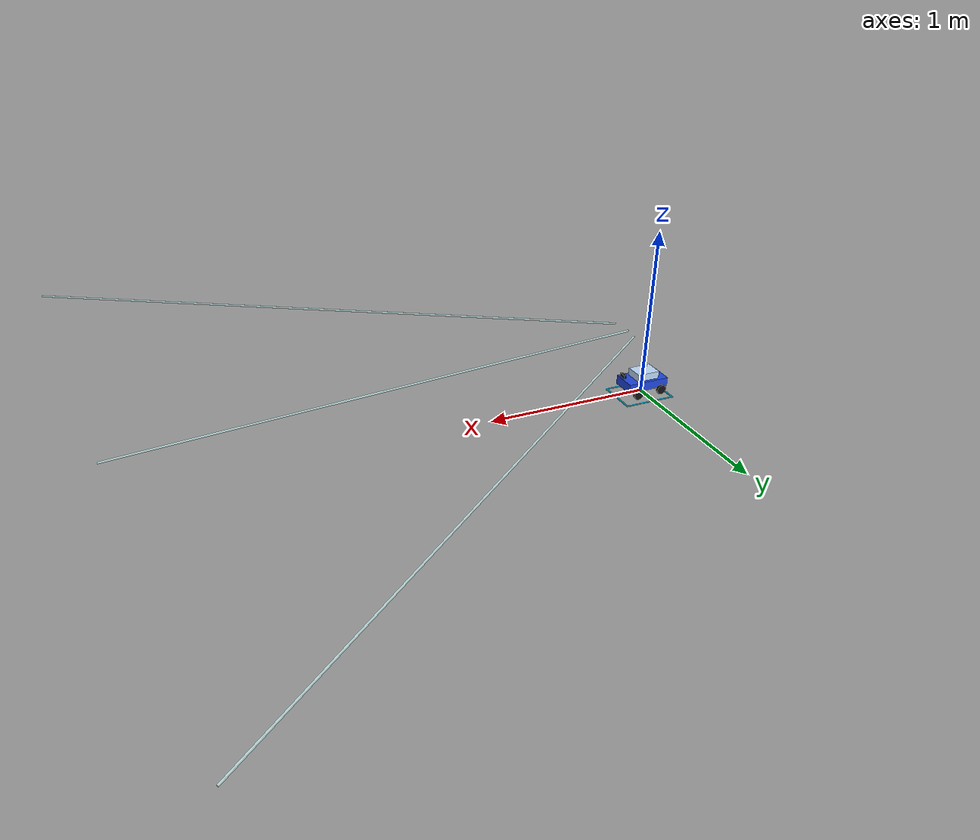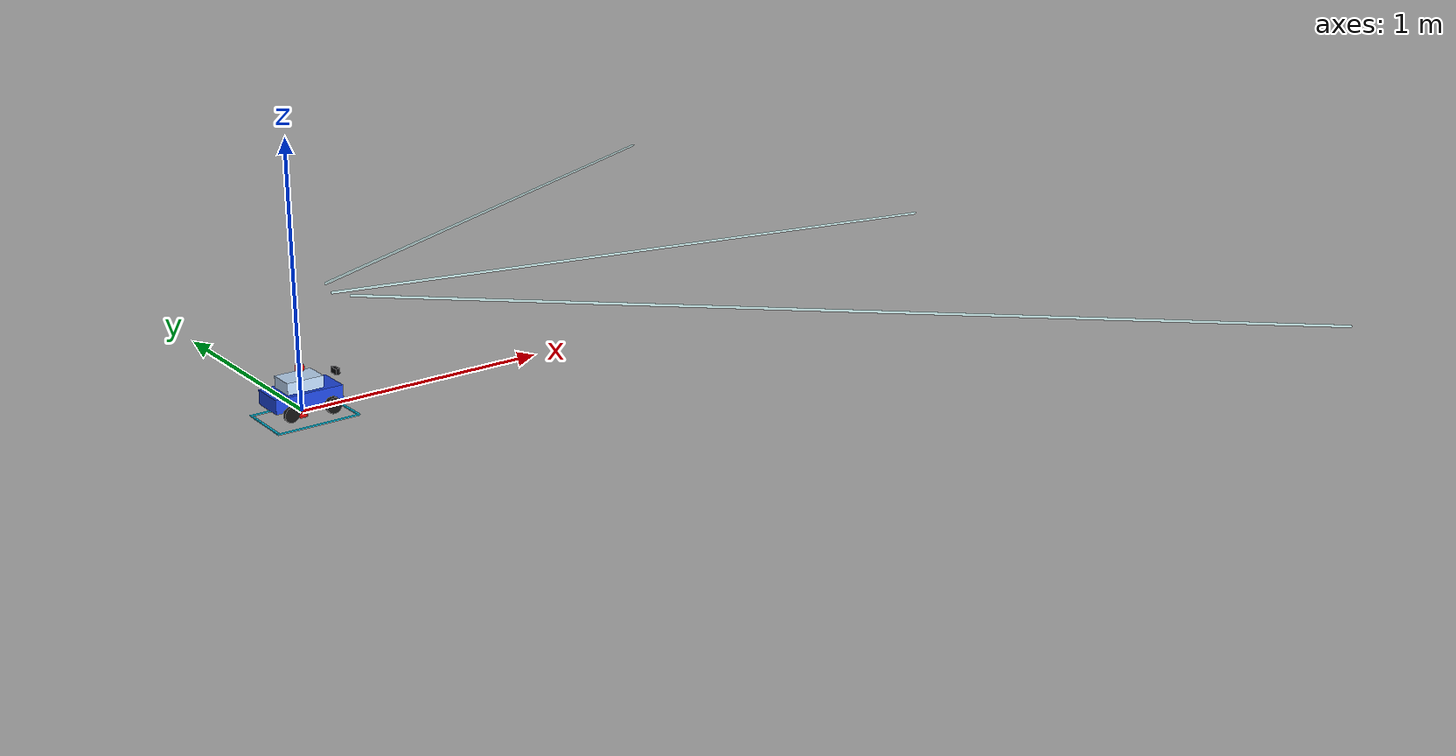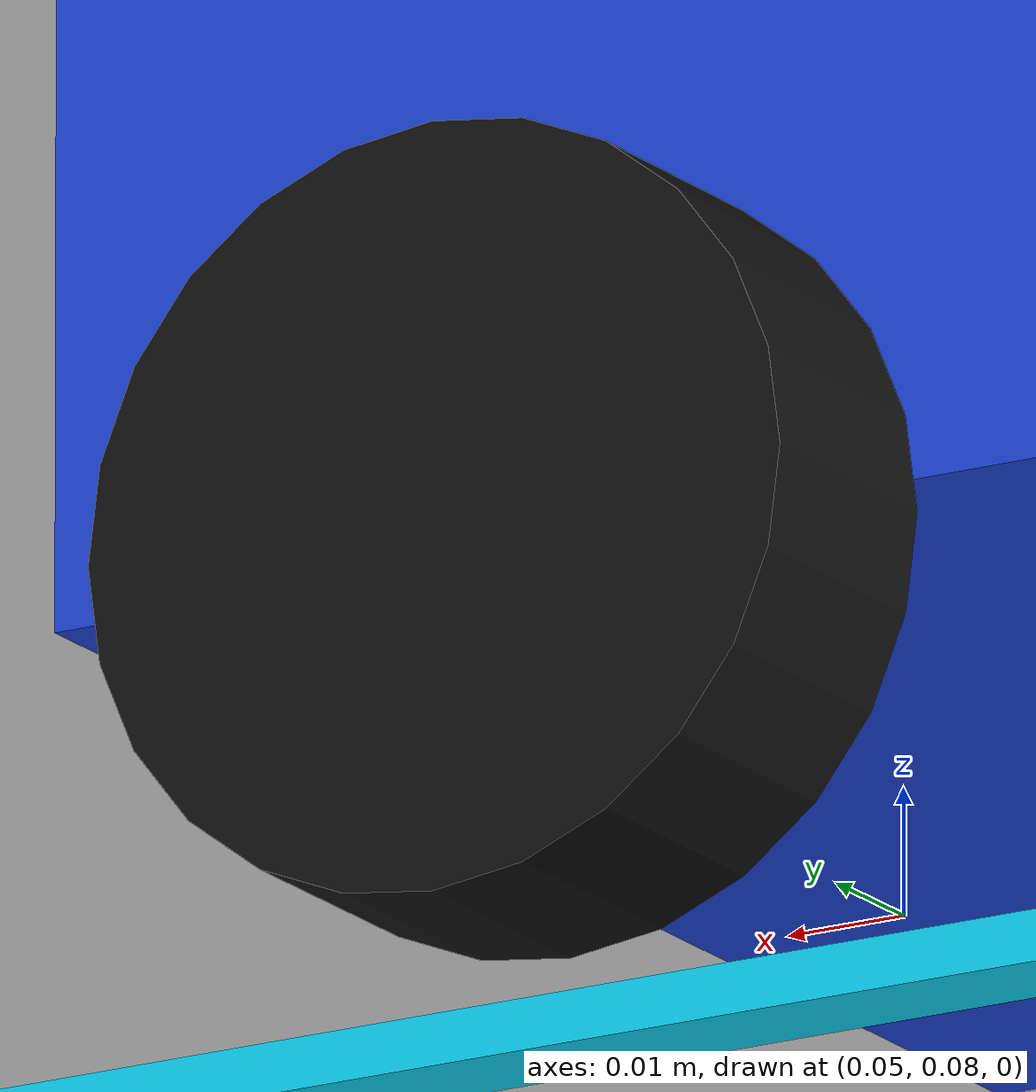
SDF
<?xml version="1.0"?>
<sdf version="1.6">
  <model name="track_preview_car">
    <static>false</static>
    <self_collide>false</self_collide>
    <allow_auto_disable>false</allow_auto_disable>
    <link name="body">
      <gravity>true</gravity>
      <inertial>
        <mass>1.0</mass>
        <inertia>
          <ixx>0.01</ixx>
          <iyy>0.01</iyy>
          <izz>0.01</izz>
          <ixy>0.0</ixy>
          <ixz>0.0</ixz>
          <iyz>0.0</iyz>
        </inertia>
      </inertial>
      <visual name="chassis_visual">
        <pose>0 0 0.065 0 0 0</pose>
        <geometry>
          <box>
            <size>0.26 0.14 0.055</size>
          </box>
        </geometry>
        <material>
          <ambient>0.08 0.20 0.70 1</ambient>
          <diffuse>0.12 0.28 0.88 1</diffuse>
          <specular>0.10 0.10 0.10 1</specular>
        </material>
      </visual>
      <visual name="roof_visual">
        <pose>-0.005 0 0.115 0 0 0</pose>
        <geometry>
          <box>
            <size>0.14 0.105 0.045</size>
          </box>
        </geometry>
        <material>
          <ambient>0.65 0.78 0.95 0.92</ambient>
          <diffuse>0.75 0.86 0.98 0.92</diffuse>
          <specular>0.10 0.10 0.10 1</specular>
        </material>
      </visual>
      <visual name="front_marker_visual">
        <pose>0.105 0 0.083 0 0 0</pose>
        <geometry>
          <box>
            <size>0.025 0.075 0.018</size>
          </box>
        </geometry>
        <material>
          <ambient>1.0 0.85 0.20 1</ambient>
          <diffuse>1.0 0.88 0.25 1</diffuse>
          <specular>0.05 0.05 0.05 1</specular>
        </material>
      </visual>
      <visual name="camera_lens_visual">
        <pose>0.138 0 0.126 0 0 0</pose>
        <geometry>
          <box>
            <size>0.016 0.040 0.022</size>
          </box>
        </geometry>
        <material>
          <ambient>0.02 0.02 0.025 1</ambient>
          <diffuse>0.04 0.04 0.05 1</diffuse>
          <specular>0.05 0.05 0.05 1</specular>
        </material>
      </visual>
      <visual name="camera_view_left_ray_visual">
        <pose>1.6700 1.1500 0.3350 0.0000 0.0505 0.6109</pose>
        <geometry>
          <box>
            <size>3.6800 0.008 0.008</size>
          </box>
        </geometry>
        <material>
          <ambient>0.85 1.00 1.00 0.82</ambient>
          <diffuse>0.85 1.00 1.00 0.82</diffuse>
          <emissive>0.20 0.55 0.75 1</emissive>
        </material>
      </visual>
      <visual name="camera_view_center_ray_visual">
        <pose>1.6700 0.0000 0.3350 0.0000 0.0555 0.0000</pose>
        <geometry>
          <box>
            <size>3.0647 0.008 0.008</size>
          </box>
        </geometry>
        <material>
          <ambient>0.85 1.00 1.00 0.82</ambient>
          <diffuse>0.85 1.00 1.00 0.82</diffuse>
          <emissive>0.20 0.55 0.75 1</emissive>
        </material>
      </visual>
      <visual name="camera_view_right_ray_visual">
        <pose>1.6700 -1.1500 0.3350 0.0000 0.0505 -0.6109</pose>
        <geometry>
          <box>
            <size>3.6800 0.008 0.008</size>
          </box>
        </geometry>
        <material>
          <ambient>0.85 1.00 1.00 0.82</ambient>
          <diffuse>0.85 1.00 1.00 0.82</diffuse>
          <emissive>0.20 0.55 0.75 1</emissive>
        </material>
      </visual>
      <visual name="debug_origin_marker_visual">
        <pose>0 0 0.165 0 0 0</pose>
        <geometry>
          <sphere>
            <radius>0.018</radius>
          </sphere>
        </geometry>
        <material>
          <ambient>1.0 0.02 0.02 1</ambient>
          <diffuse>1.0 0.04 0.04 1</diffuse>
          <specular>0.08 0.08 0.08 1</specular>
        </material>
      </visual>
      <!-- Matches the footprint checker in gazebo_track_car.py. -->
      <visual name="debug_ground_origin_visual">
        <pose>0 0 -0.017 0 0 0</pose>
        <geometry>
          <cylinder>
            <radius>0.018</radius>
            <length>0.004</length>
          </cylinder>
        </geometry>
        <material>
          <ambient>1.0 0.02 0.02 1</ambient>
          <diffuse>1.0 0.04 0.04 1</diffuse>
          <specular>0.08 0.08 0.08 1</specular>
        </material>
      </visual>
      <visual name="debug_ground_footprint_front_visual">
        <pose>0.165 0 -0.017 0 0 0</pose>
        <geometry>
          <box>
            <size>0.008 0.238 0.004</size>
          </box>
        </geometry>
        <material>
          <ambient>0.00 0.70 1.00 1</ambient>
          <diffuse>0.05 0.86 1.00 1</diffuse>
          <specular>0.02 0.02 0.02 1</specular>
        </material>
      </visual>
      <visual name="debug_ground_footprint_rear_visual">
        <pose>-0.145 0 -0.017 0 0 0</pose>
        <geometry>
          <box>
            <size>0.008 0.238 0.004</size>
          </box>
        </geometry>
        <material>
          <ambient>0.00 0.70 1.00 1</ambient>
          <diffuse>0.05 0.86 1.00 1</diffuse>
          <specular>0.02 0.02 0.02 1</specular>
        </material>
      </visual>
      <visual name="debug_ground_footprint_left_visual">
        <pose>0.010 0.115 -0.017 0 0 0</pose>
        <geometry>
          <box>
            <size>0.318 0.008 0.004</size>
          </box>
        </geometry>
        <material>
          <ambient>0.00 0.70 1.00 1</ambient>
          <diffuse>0.05 0.86 1.00 1</diffuse>
          <specular>0.02 0.02 0.02 1</specular>
        </material>
      </visual>
      <visual name="debug_ground_footprint_right_visual">
        <pose>0.010 -0.115 -0.017 0 0 0</pose>
        <geometry>
          <box>
            <size>0.318 0.008 0.004</size>
          </box>
        </geometry>
        <material>
          <ambient>0.00 0.70 1.00 1</ambient>
          <diffuse>0.05 0.86 1.00 1</diffuse>
          <specular>0.02 0.02 0.02 1</specular>
        </material>
      </visual>
      <visual name="rear_left_dummy_wheel_visual">
        <pose>-0.080 0.085 0.032 1.5708 0 0</pose>
        <geometry>
          <cylinder>
            <radius>0.028</radius>
            <length>0.016</length>
          </cylinder>
        </geometry>
        <material>
          <ambient>0.03 0.03 0.03 1</ambient>
          <diffuse>0.07 0.07 0.07 1</diffuse>
          <specular>0.02 0.02 0.02 1</specular>
        </material>
      </visual>
      <visual name="rear_right_dummy_wheel_visual">
        <pose>-0.080 -0.085 0.032 1.5708 0 0</pose>
        <geometry>
          <cylinder>
            <radius>0.028</radius>
            <length>0.016</length>
          </cylinder>
        </geometry>
        <material>
          <ambient>0.03 0.03 0.03 1</ambient>
          <diffuse>0.07 0.07 0.07 1</diffuse>
          <specular>0.02 0.02 0.02 1</specular>
        </material>
      </visual>
      <collision name="rear_left_caster_collision">
        <pose>-0.095 0.072 0.026 0 0 0</pose>
        <geometry>
          <sphere>
            <radius>0.024</radius>
          </sphere>
        </geometry>
        <surface>
          <friction>
            <ode>
              <mu>0.05</mu>
              <mu2>0.05</mu2>
            </ode>
          </friction>
        </surface>
      </collision>
      <collision name="rear_right_caster_collision">
        <pose>-0.095 -0.072 0.026 0 0 0</pose>
        <geometry>
          <sphere>
            <radius>0.024</radius>
          </sphere>
        </geometry>
        <surface>
          <friction>
            <ode>
              <mu>0.05</mu>
              <mu2>0.05</mu2>
            </ode>
          </friction>
        </surface>
      </collision>
      <collision name="body_collision">
        <pose>0 0 0.065 0 0 0</pose>
        <geometry>
          <box>
            <size>0.26 0.14 0.05</size>
          </box>
        </geometry>
      </collision>
      <sensor name="front_camera" type="camera">
        <pose>0.14 0 0.42 0 0.18 0</pose>
        <always_on>true</always_on>
        <update_rate>30</update_rate>
        <visualize>false</visualize>
        <camera>
          <horizontal_fov>2.45</horizontal_fov>
          <image>
            <width>960</width>
            <height>540</height>
            <format>R8G8B8</format>
          </image>
          <clip>
            <near>0.02</near>
            <far>6.0</far>
          </clip>
        </camera>
        <plugin name="front_camera_controller" filename="libgazebo_ros_camera.so">
          <ros>
            <namespace>/track_preview_car</namespace>
            <remapping>image_raw:=image_raw</remapping>
            <remapping>camera_info:=camera_info</remapping>
          </ros>
          <camera_name>camera</camera_name>
          <frame_name>track_preview_car/front_camera</frame_name>
        </plugin>
      </sensor>
    </link>
    <link name="left_wheel">
      <gravity>true</gravity>
      <pose>0.080 0.088 0.032 0 0 0</pose>
      <inertial>
        <mass>0.08</mass>
        <inertia>
          <ixx>0.00005</ixx>
          <iyy>0.00008</iyy>
          <izz>0.00005</izz>
          <ixy>0.0</ixy>
          <ixz>0.0</ixz>
          <iyz>0.0</iyz>
        </inertia>
      </inertial>
      <visual name="left_wheel_visual">
        <pose>0 0 0 1.5708 0 0</pose>
        <geometry>
          <cylinder>
            <radius>0.030</radius>
            <length>0.020</length>
          </cylinder>
        </geometry>
        <material>
          <ambient>0.03 0.03 0.03 1</ambient>
          <diffuse>0.07 0.07 0.07 1</diffuse>
          <specular>0.02 0.02 0.02 1</specular>
        </material>
      </visual>
      <collision name="left_wheel_collision">
        <pose>0 0 0 1.5708 0 0</pose>
        <geometry>
          <cylinder>
            <radius>0.030</radius>
            <length>0.020</length>
          </cylinder>
        </geometry>
        <surface>
          <friction>
            <ode>
              <mu>1.2</mu>
              <mu2>1.2</mu2>
            </ode>
          </friction>
        </surface>
      </collision>
    </link>
    <link name="right_wheel">
      <gravity>true</gravity>
      <pose>0.080 -0.088 0.032 0 0 0</pose>
      <inertial>
        <mass>0.08</mass>
        <inertia>
          <ixx>0.00005</ixx>
          <iyy>0.00008</iyy>
          <izz>0.00005</izz>
          <ixy>0.0</ixy>
          <ixz>0.0</ixz>
          <iyz>0.0</iyz>
        </inertia>
      </inertial>
      <visual name="right_wheel_visual">
        <pose>0 0 0 1.5708 0 0</pose>
        <geometry>
          <cylinder>
            <radius>0.030</radius>
            <length>0.020</length>
          </cylinder>
        </geometry>
        <material>
          <ambient>0.03 0.03 0.03 1</ambient>
          <diffuse>0.07 0.07 0.07 1</diffuse>
          <specular>0.02 0.02 0.02 1</specular>
        </material>
      </visual>
      <collision name="right_wheel_collision">
        <pose>0 0 0 1.5708 0 0</pose>
        <geometry>
          <cylinder>
            <radius>0.030</radius>
            <length>0.020</length>
          </cylinder>
        </geometry>
        <surface>
          <friction>
            <ode>
              <mu>1.2</mu>
              <mu2>1.2</mu2>
            </ode>
          </friction>
        </surface>
      </collision>
    </link>
    <joint name="left_wheel_joint" type="revolute">
      <parent>body</parent>
      <child>left_wheel</child>
      <axis>
        <xyz>0 1 0</xyz>
        <limit>
          <lower>-1.0e16</lower>
          <upper>1.0e16</upper>
        </limit>
      </axis>
    </joint>
    <joint name="right_wheel_joint" type="revolute">
      <parent>body</parent>
      <child>right_wheel</child>
      <axis>
        <xyz>0 1 0</xyz>
        <limit>
          <lower>-1.0e16</lower>
          <upper>1.0e16</upper>
        </limit>
      </axis>
    </joint>
    <plugin name="track_preview_car_diff_drive" filename="libgazebo_ros_diff_drive.so">
      <ros>
        <namespace>/track_preview_car</namespace>
        <remapping>cmd_vel:=cmd_vel</remapping>
        <remapping>odom:=odom</remapping>
      </ros>
      <left_joint>left_wheel_joint</left_joint>
      <right_joint>right_wheel_joint</right_joint>
      <wheel_separation>0.176</wheel_separation>
      <wheel_diameter>0.06</wheel_diameter>
      <max_wheel_torque>2.0</max_wheel_torque>
      <max_wheel_acceleration>8.0</max_wheel_acceleration>
      <odometry_frame>odom</odometry_frame>
      <robot_base_frame>body</robot_base_frame>
      <publish_odom>true</publish_odom>
      <publish_odom_tf>false</publish_odom_tf>
      <publish_wheel_tf>false</publish_wheel_tf>
      <update_rate>50</update_rate>
    </plugin>
  </model>
</sdf>
